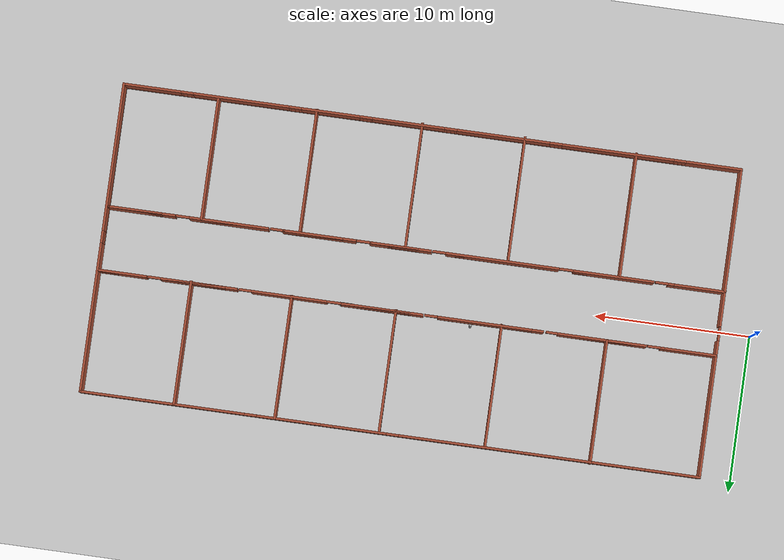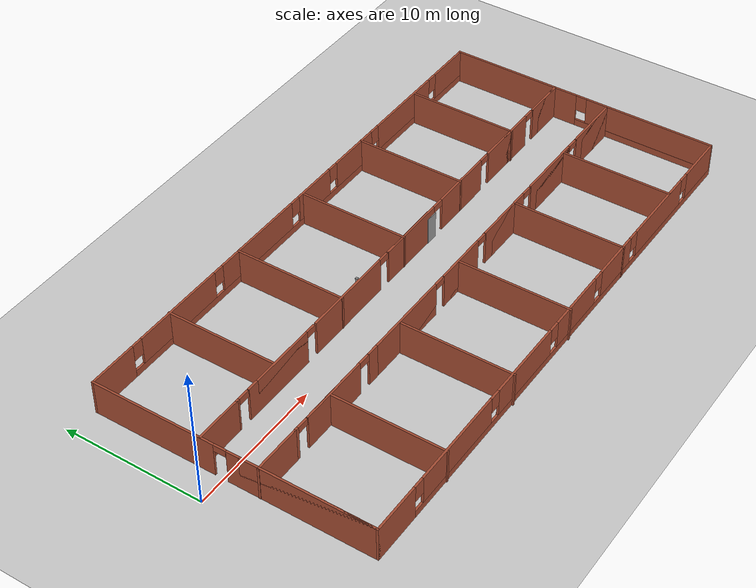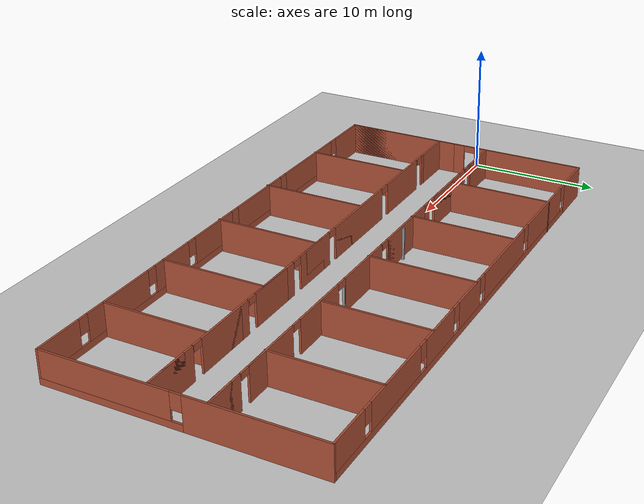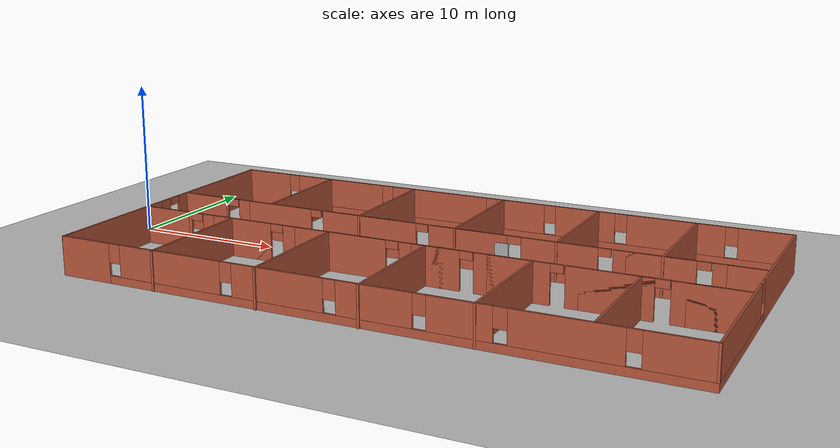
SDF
<sdf version="1.7">
 <world name="default">
  <light name="sun" type="directional">
   <pose>0 0 10 0 -0 0</pose>
   <diffuse>0.8 0.8 0.8 1</diffuse>
   <specular>0.2 0.2 0.2 1</specular>
   <attenuation>
    <range>1000</range>
    <constant>0.9</constant>
    <linear>0.01</linear>
    <quadratic>0.001</quadratic>
   </attenuation>
   <direction>-0.5 0.1 -0.9</direction>
   <spot><inner_angle>0</inner_angle><outer_angle>0</outer_angle><falloff>0</falloff></spot>
  </light>
  <model name="ground_plane">
   <static>1</static>
   <link name="link">
    <collision name="collision">
     <geometry><plane><normal>0 0 1</normal><size>100 100</size></plane></geometry>
     <surface>
      <contact><collide_bitmask>65535</collide_bitmask></contact>
      <friction><ode><mu>100</mu><mu2>50</mu2></ode></friction>
     </surface>
    </collision>
    <visual name="visual">
     <cast_shadows>0</cast_shadows>
     <geometry><plane><normal>0 0 1</normal><size>100 100</size></plane></geometry>
     <material>
      <script><uri>file://media/materials/scripts/gazebo.material</uri><name>Gazebo/Grey</name></script>
     </material>
    </visual>
   </link>
  </model>
  <gravity>0 0 -9.8</gravity>
  <magnetic_field>6e-06 2.3e-05 -4.2e-05</magnetic_field>
  <atmosphere type="adiabatic"/>
  <physics type="ode">
   <max_step_size>0.001</max_step_size>
   <real_time_factor>1</real_time_factor>
   <real_time_update_rate>1000</real_time_update_rate>
  </physics>
  <scene><ambient>0.4 0.4 0.4 1</ambient><background>0.7 0.7 0.7 1</background><shadows>1</shadows></scene>
  <spherical_coordinates>
   <surface_model>EARTH_WGS84</surface_model>
   <latitude_deg>0</latitude_deg>
   <longitude_deg>0</longitude_deg>
   <elevation>0</elevation>
   <heading_deg>0</heading_deg>
  </spherical_coordinates>
  <model name="B4_Mechatronics">
   <pose>22.0011 -0.572284 0 0 -0 0</pose>
   <link name="Door_15">
    <collision name="Door_15_Collision">
     <geometry><box><size>0.9 0.17 2</size></box></geometry>
     <pose>0 0 1 0 -0 0</pose>
    </collision>
    <visual name="Door_15_Visual">
     <pose>0 0 1 0 -0 0</pose>
     <geometry><box><size>0.9 0.17 2</size></box></geometry>
     <material>
      <script><uri>file://media/materials/scripts/gazebo.material</uri><name>Gazebo/Grey</name></script>
     </material>
    </visual>
    <pose>3.88774 2.09865 0 0 -0 0</pose>
   </link>
   <link name="Wall_18">
    <pose>0.010662 -9.8888 0 0 -0 0</pose>
    <visual name="Wall_18_Visual_0">
     <pose>-18.1899 0 1.25 0 -0 0</pose>
     <geometry><box><size>3.6203 0.15 2.5</size></box></geometry>
     <material>
      <script><uri>file://media/materials/scripts/gazebo.material</uri><name>Gazebo/Bricks</name></script>
      <ambient>1 1 1 1</ambient>
     </material>
     <meta><layer>0</layer></meta>
    </visual>
    <collision name="Wall_18_Collision_0">
     <geometry><box><size>3.6203 0.15 2.5</size></box></geometry>
     <pose>-18.1899 0 1.25 0 -0 0</pose>
    </collision>
    <visual name="Wall_18_Visual_1">
     <pose>1.81015 0 0.25 0 -0 0</pose>
     <geometry><box><size>36.3797 0.15 0.5</size></box></geometry>
     <material>
      <script><uri>file://media/materials/scripts/gazebo.material</uri><name>Gazebo/Bricks</name></script>
      <ambient>1 1 1 1</ambient>
     </material>
     <meta><layer>0</layer></meta>
    </visual>
    <collision name="Wall_18_Collision_1">
     <geometry><box><size>36.3797 0.15 0.5</size></box></geometry>
     <pose>1.81015 0 0.25 0 -0 0</pose>
    </collision>
    <visual name="Wall_18_Visual_2">
     <pose>-11.9771 0 1.5 0 -0 0</pose>
     <geometry><box><size>7.2052 0.15 2</size></box></geometry>
     <material>
      <script><uri>file://media/materials/scripts/gazebo.material</uri><name>Gazebo/Bricks</name></script>
      <ambient>1 1 1 1</ambient>
     </material>
     <meta><layer>0</layer></meta>
    </visual>
    <collision name="Wall_18_Collision_2">
     <geometry><box><size>7.2052 0.15 2</size></box></geometry>
     <pose>-11.9771 0 1.5 0 -0 0</pose>
    </collision>
    <visual name="Wall_18_Visual_3">
     <pose>-4.57407 0 1.5 0 -0 0</pose>
     <geometry><box><size>6.00086 0.15 2</size></box></geometry>
     <material>
      <script><uri>file://media/materials/scripts/gazebo.material</uri><name>Gazebo/Bricks</name></script>
      <ambient>1 1 1 1</ambient>
     </material>
     <meta><layer>0</layer></meta>
    </visual>
    <collision name="Wall_18_Collision_3">
     <geometry><box><size>6.00086 0.15 2</size></box></geometry>
     <pose>-4.57407 0 1.5 0 -0 0</pose>
    </collision>
    <visual name="Wall_18_Visual_4">
     <pose>1.55577 0 1.5 0 -0 0</pose>
     <geometry><box><size>4.65882 0.15 2</size></box></geometry>
     <material>
      <script><uri>file://media/materials/scripts/gazebo.material</uri><name>Gazebo/Bricks</name></script>
      <ambient>1 1 1 1</ambient>
     </material>
     <meta><layer>0</layer></meta>
    </visual>
    <collision name="Wall_18_Collision_4">
     <geometry><box><size>4.65882 0.15 2</size></box></geometry>
     <pose>1.55577 0 1.5 0 -0 0</pose>
    </collision>
    <visual name="Wall_18_Visual_5">
     <pose>6.57511 0 1.5 0 -0 0</pose>
     <geometry><box><size>3.77986 0.15 2</size></box></geometry>
     <material>
      <script><uri>file://media/materials/scripts/gazebo.material</uri><name>Gazebo/Bricks</name></script>
      <ambient>1 1 1 1</ambient>
     </material>
     <meta><layer>0</layer></meta>
    </visual>
    <collision name="Wall_18_Collision_5">
     <geometry><box><size>3.77986 0.15 2</size></box></geometry>
     <pose>6.57511 0 1.5 0 -0 0</pose>
    </collision>
    <visual name="Wall_18_Visual_6">
     <pose>12.3525 0 1.5 0 -0 0</pose>
     <geometry><box><size>6.17492 0.15 2</size></box></geometry>
     <material>
      <script><uri>file://media/materials/scripts/gazebo.material</uri><name>Gazebo/Bricks</name></script>
      <ambient>1 1 1 1</ambient>
     </material>
     <meta><layer>0</layer></meta>
    </visual>
    <collision name="Wall_18_Collision_6">
     <geometry><box><size>6.17492 0.15 2</size></box></geometry>
     <pose>12.3525 0 1.5 0 -0 0</pose>
    </collision>
    <visual name="Wall_18_Visual_7">
     <pose>18.12 0 1.5 0 -0 0</pose>
     <geometry><box><size>3.76003 0.15 2</size></box></geometry>
     <material>
      <script><uri>file://media/materials/scripts/gazebo.material</uri><name>Gazebo/Bricks</name></script>
      <ambient>1 1 1 1</ambient>
     </material>
     <meta><layer>0</layer></meta>
    </visual>
    <collision name="Wall_18_Collision_7">
     <geometry><box><size>3.76003 0.15 2</size></box></geometry>
     <pose>18.12 0 1.5 0 -0 0</pose>
    </collision>
    <visual name="Wall_18_Visual_8">
     <pose>-15.9797 0 1.9 0 -0 0</pose>
     <geometry><box><size>0.8 0.15 1.2</size></box></geometry>
     <material>
      <script><uri>file://media/materials/scripts/gazebo.material</uri><name>Gazebo/Bricks</name></script>
      <ambient>1 1 1 1</ambient>
     </material>
     <meta><layer>0</layer></meta>
    </visual>
    <collision name="Wall_18_Collision_8">
     <geometry><box><size>0.8 0.15 1.2</size></box></geometry>
     <pose>-15.9797 0 1.9 0 -0 0</pose>
    </collision>
    <visual name="Wall_18_Visual_9">
     <pose>-7.9745 0 1.9 0 -0 0</pose>
     <geometry><box><size>0.8 0.15 1.2</size></box></geometry>
     <material>
      <script><uri>file://media/materials/scripts/gazebo.material</uri><name>Gazebo/Bricks</name></script>
      <ambient>1 1 1 1</ambient>
     </material>
     <meta><layer>0</layer></meta>
    </visual>
    <collision name="Wall_18_Collision_9">
     <geometry><box><size>0.8 0.15 1.2</size></box></geometry>
     <pose>-7.9745 0 1.9 0 -0 0</pose>
    </collision>
    <visual name="Wall_18_Visual_10">
     <pose>-1.17364 0 1.9 0 -0 0</pose>
     <geometry><box><size>0.8 0.15 1.2</size></box></geometry>
     <material>
      <script><uri>file://media/materials/scripts/gazebo.material</uri><name>Gazebo/Bricks</name></script>
      <ambient>1 1 1 1</ambient>
     </material>
     <meta><layer>0</layer></meta>
    </visual>
    <collision name="Wall_18_Collision_10">
     <geometry><box><size>0.8 0.15 1.2</size></box></geometry>
     <pose>-1.17364 0 1.9 0 -0 0</pose>
    </collision>
    <visual name="Wall_18_Visual_11">
     <pose>4.28518 0 1.9 0 -0 0</pose>
     <geometry><box><size>0.8 0.15 1.2</size></box></geometry>
     <material>
      <script><uri>file://media/materials/scripts/gazebo.material</uri><name>Gazebo/Bricks</name></script>
      <ambient>1 1 1 1</ambient>
     </material>
     <meta><layer>0</layer></meta>
    </visual>
    <collision name="Wall_18_Collision_11">
     <geometry><box><size>0.8 0.15 1.2</size></box></geometry>
     <pose>4.28518 0 1.9 0 -0 0</pose>
    </collision>
    <visual name="Wall_18_Visual_12">
     <pose>8.86504 0 1.9 0 -0 0</pose>
     <geometry><box><size>0.8 0.15 1.2</size></box></geometry>
     <material>
      <script><uri>file://media/materials/scripts/gazebo.material</uri><name>Gazebo/Bricks</name></script>
      <ambient>1 1 1 1</ambient>
     </material>
     <meta><layer>0</layer></meta>
    </visual>
    <collision name="Wall_18_Collision_12">
     <geometry><box><size>0.8 0.15 1.2</size></box></geometry>
     <pose>8.86504 0 1.9 0 -0 0</pose>
    </collision>
    <visual name="Wall_18_Visual_13">
     <pose>15.84 0 1.9 0 -0 0</pose>
     <geometry><box><size>0.8 0.15 1.2</size></box></geometry>
     <material>
      <script><uri>file://media/materials/scripts/gazebo.material</uri><name>Gazebo/Bricks</name></script>
      <ambient>1 1 1 1</ambient>
     </material>
     <meta><layer>0</layer></meta>
    </visual>
    <collision name="Wall_18_Collision_13">
     <geometry><box><size>0.8 0.15 1.2</size></box></geometry>
     <pose>15.84 0 1.9 0 -0 0</pose>
    </collision>
   </link>
   <link name="Wall_21">
    <pose>1.65506 2.12907 0 0 -0 0</pose>
    <visual name="Wall_21_Visual_0">
     <pose>-18.1274 0 1.25 0 -0 0</pose>
     <geometry><box><size>0.245247 0.15 2.5</size></box></geometry>
     <material>
      <script><uri>file://media/materials/scripts/gazebo.material</uri><name>Gazebo/Bricks</name></script>
      <ambient>1 1 1 1</ambient>
     </material>
     <meta><layer>0</layer></meta>
    </visual>
    <collision name="Wall_21_Collision_0">
     <geometry><box><size>0.245247 0.15 2.5</size></box></geometry>
     <pose>-18.1274 0 1.25 0 -0 0</pose>
    </collision>
    <visual name="Wall_21_Visual_1">
     <pose>-14.2392 0 1.25 0 -0 0</pose>
     <geometry><box><size>5.73102 0.15 2.5</size></box></geometry>
     <material>
      <script><uri>file://media/materials/scripts/gazebo.material</uri><name>Gazebo/Bricks</name></script>
      <ambient>1 1 1 1</ambient>
     </material>
     <meta><layer>0</layer></meta>
    </visual>
    <collision name="Wall_21_Collision_1">
     <geometry><box><size>5.73102 0.15 2.5</size></box></geometry>
     <pose>-14.2392 0 1.25 0 -0 0</pose>
    </collision>
    <visual name="Wall_21_Visual_2">
     <pose>-13.8134 0 1.25 0 -0 0</pose>
     <geometry><box><size>4.87932 0.15 2.5</size></box></geometry>
     <material>
      <script><uri>file://media/materials/scripts/gazebo.material</uri><name>Gazebo/Bricks</name></script>
      <ambient>1 1 1 1</ambient>
     </material>
     <meta><layer>0</layer></meta>
    </visual>
    <collision name="Wall_21_Collision_2">
     <geometry><box><size>4.87932 0.15 2.5</size></box></geometry>
     <pose>-13.8134 0 1.25 0 -0 0</pose>
    </collision>
    <visual name="Wall_21_Visual_3">
     <pose>-7.04602 0 1.25 0 -0 0</pose>
     <geometry><box><size>6.85543 0.15 2.5</size></box></geometry>
     <material>
      <script><uri>file://media/materials/scripts/gazebo.material</uri><name>Gazebo/Bricks</name></script>
      <ambient>1 1 1 1</ambient>
     </material>
     <meta><layer>0</layer></meta>
    </visual>
    <collision name="Wall_21_Collision_3">
     <geometry><box><size>6.85543 0.15 2.5</size></box></geometry>
     <pose>-7.04602 0 1.25 0 -0 0</pose>
    </collision>
    <visual name="Wall_21_Visual_4">
     <pose>-6.6658 0 1.25 0 -0 0</pose>
     <geometry><box><size>6.09499 0.15 2.5</size></box></geometry>
     <material>
      <script><uri>file://media/materials/scripts/gazebo.material</uri><name>Gazebo/Bricks</name></script>
      <ambient>1 1 1 1</ambient>
     </material>
     <meta><layer>0</layer></meta>
    </visual>
    <collision name="Wall_21_Collision_4">
     <geometry><box><size>6.09499 0.15 2.5</size></box></geometry>
     <pose>-6.6658 0 1.25 0 -0 0</pose>
    </collision>
    <visual name="Wall_21_Visual_5">
     <pose>-0.065721 0 1.25 0 -0 0</pose>
     <geometry><box><size>5.30517 0.15 2.5</size></box></geometry>
     <material>
      <script><uri>file://media/materials/scripts/gazebo.material</uri><name>Gazebo/Bricks</name></script>
      <ambient>1 1 1 1</ambient>
     </material>
     <meta><layer>0</layer></meta>
    </visual>
    <collision name="Wall_21_Collision_5">
     <geometry><box><size>5.30517 0.15 2.5</size></box></geometry>
     <pose>-0.065721 0 1.25 0 -0 0</pose>
    </collision>
    <visual name="Wall_21_Visual_6">
     <pose>0.344915 0 1.25 0 -0 0</pose>
     <geometry><box><size>4.4839 0.15 2.5</size></box></geometry>
     <material>
      <script><uri>file://media/materials/scripts/gazebo.material</uri><name>Gazebo/Bricks</name></script>
      <ambient>1 1 1 1</ambient>
     </material>
     <meta><layer>0</layer></meta>
    </visual>
    <collision name="Wall_21_Collision_6">
     <geometry><box><size>4.4839 0.15 2.5</size></box></geometry>
     <pose>0.344915 0 1.25 0 -0 0</pose>
    </collision>
    <visual name="Wall_21_Visual_7">
     <pose>5.92653 0 1.25 0 -0 0</pose>
     <geometry><box><size>4.87932 0.15 2.5</size></box></geometry>
     <material>
      <script><uri>file://media/materials/scripts/gazebo.material</uri><name>Gazebo/Bricks</name></script>
      <ambient>1 1 1 1</ambient>
     </material>
     <meta><layer>0</layer></meta>
    </visual>
    <collision name="Wall_21_Collision_7">
     <geometry><box><size>4.87932 0.15 2.5</size></box></geometry>
     <pose>5.92653 0 1.25 0 -0 0</pose>
    </collision>
    <visual name="Wall_21_Visual_8">
     <pose>11.7363 0 1.25 0 -0 0</pose>
     <geometry><box><size>4.94016 0.15 2.5</size></box></geometry>
     <material>
      <script><uri>file://media/materials/scripts/gazebo.material</uri><name>Gazebo/Bricks</name></script>
      <ambient>1 1 1 1</ambient>
     </material>
     <meta><layer>0</layer></meta>
    </visual>
    <collision name="Wall_21_Collision_8">
     <geometry><box><size>4.94016 0.15 2.5</size></box></geometry>
     <pose>11.7363 0 1.25 0 -0 0</pose>
    </collision>
    <visual name="Wall_21_Visual_9">
     <pose>12.1317 0 1.25 0 -0 0</pose>
     <geometry><box><size>4.1493 0.15 2.5</size></box></geometry>
     <material>
      <script><uri>file://media/materials/scripts/gazebo.material</uri><name>Gazebo/Bricks</name></script>
      <ambient>1 1 1 1</ambient>
     </material>
     <meta><layer>0</layer></meta>
    </visual>
    <collision name="Wall_21_Collision_9">
     <geometry><box><size>4.1493 0.15 2.5</size></box></geometry>
     <pose>12.1317 0 1.25 0 -0 0</pose>
    </collision>
    <visual name="Wall_21_Visual_10">
     <pose>16.6782 0 1.25 0 -0 0</pose>
     <geometry><box><size>3.14365 0.15 2.5</size></box></geometry>
     <material>
      <script><uri>file://media/materials/scripts/gazebo.material</uri><name>Gazebo/Bricks</name></script>
      <ambient>1 1 1 1</ambient>
     </material>
     <meta><layer>0</layer></meta>
    </visual>
    <collision name="Wall_21_Collision_10">
     <geometry><box><size>3.14365 0.15 2.5</size></box></geometry>
     <pose>16.6782 0 1.25 0 -0 0</pose>
    </collision>
    <visual name="Wall_21_Visual_11">
     <pose>17.0888 0 1.25 0 -0 0</pose>
     <geometry><box><size>2.32238 0.15 2.5</size></box></geometry>
     <material>
      <script><uri>file://media/materials/scripts/gazebo.material</uri><name>Gazebo/Bricks</name></script>
      <ambient>1 1 1 1</ambient>
     </material>
     <meta><layer>0</layer></meta>
    </visual>
    <collision name="Wall_21_Collision_11">
     <geometry><box><size>2.32238 0.15 2.5</size></box></geometry>
     <pose>17.0888 0 1.25 0 -0 0</pose>
    </collision>
    <visual name="Wall_21_Visual_12">
     <pose>-17.5789 0 2.25 0 -0 0</pose>
     <geometry><box><size>0.85169 0.15 0.5</size></box></geometry>
     <material>
      <script><uri>file://media/materials/scripts/gazebo.material</uri><name>Gazebo/Bricks</name></script>
      <ambient>1 1 1 1</ambient>
     </material>
     <meta><layer>0</layer></meta>
    </visual>
    <collision name="Wall_21_Collision_12">
     <geometry><box><size>0.85169 0.15 0.5</size></box></geometry>
     <pose>-17.5789 0 2.25 0 -0 0</pose>
    </collision>
    <visual name="Wall_21_Visual_13">
     <pose>-10.9935 0 2.25 0 -0 0</pose>
     <geometry><box><size>0.760437 0.15 0.5</size></box></geometry>
     <material>
      <script><uri>file://media/materials/scripts/gazebo.material</uri><name>Gazebo/Bricks</name></script>
      <ambient>1 1 1 1</ambient>
     </material>
     <meta><layer>0</layer></meta>
    </visual>
    <collision name="Wall_21_Collision_13">
     <geometry><box><size>0.760437 0.15 0.5</size></box></geometry>
     <pose>-10.9935 0 2.25 0 -0 0</pose>
    </collision>
    <visual name="Wall_21_Visual_14">
     <pose>-10.9935 0 2.25 0 -0 0</pose>
     <geometry><box><size>0.760437 0.15 0.5</size></box></geometry>
     <material>
      <script><uri>file://media/materials/scripts/gazebo.material</uri><name>Gazebo/Bricks</name></script>
      <ambient>1 1 1 1</ambient>
     </material>
     <meta><layer>0</layer></meta>
    </visual>
    <collision name="Wall_21_Collision_14">
     <geometry><box><size>0.760437 0.15 0.5</size></box></geometry>
     <pose>-10.9935 0 2.25 0 -0 0</pose>
    </collision>
    <visual name="Wall_21_Visual_15">
     <pose>-3.20767 0 2.25 0 -0 0</pose>
     <geometry><box><size>0.821272 0.15 0.5</size></box></geometry>
     <material>
      <script><uri>file://media/materials/scripts/gazebo.material</uri><name>Gazebo/Bricks</name></script>
      <ambient>1 1 1 1</ambient>
     </material>
     <meta><layer>0</layer></meta>
    </visual>
    <collision name="Wall_21_Collision_15">
     <geometry><box><size>0.821272 0.15 0.5</size></box></geometry>
     <pose>-3.20767 0 2.25 0 -0 0</pose>
    </collision>
    <visual name="Wall_21_Visual_16">
     <pose>-3.20767 0 2.25 0 -0 0</pose>
     <geometry><box><size>0.821272 0.15 0.5</size></box></geometry>
     <material>
      <script><uri>file://media/materials/scripts/gazebo.material</uri><name>Gazebo/Bricks</name></script>
      <ambient>1 1 1 1</ambient>
     </material>
     <meta><layer>0</layer></meta>
    </visual>
    <collision name="Wall_21_Collision_16">
     <geometry><box><size>0.821272 0.15 0.5</size></box></geometry>
     <pose>-3.20767 0 2.25 0 -0 0</pose>
    </collision>
    <visual name="Wall_21_Visual_17">
     <pose>3.03686 0 2.25 0 -0 0</pose>
     <geometry><box><size>0.9 0.15 0.5</size></box></geometry>
     <material>
      <script><uri>file://media/materials/scripts/gazebo.material</uri><name>Gazebo/Bricks</name></script>
      <ambient>1 1 1 1</ambient>
     </material>
     <meta><layer>0</layer></meta>
    </visual>
    <collision name="Wall_21_Collision_17">
     <geometry><box><size>0.9 0.15 0.5</size></box></geometry>
     <pose>3.03686 0 2.25 0 -0 0</pose>
    </collision>
    <visual name="Wall_21_Visual_18">
     <pose>3.03686 0 2.25 0 -0 0</pose>
     <geometry><box><size>0.9 0.15 0.5</size></box></geometry>
     <material>
      <script><uri>file://media/materials/scripts/gazebo.material</uri><name>Gazebo/Bricks</name></script>
      <ambient>1 1 1 1</ambient>
     </material>
     <meta><layer>0</layer></meta>
    </visual>
    <collision name="Wall_21_Collision_18">
     <geometry><box><size>0.9 0.15 0.5</size></box></geometry>
     <pose>3.03686 0 2.25 0 -0 0</pose>
    </collision>
    <visual name="Wall_21_Visual_19">
     <pose>8.76162 0 2.25 0 -0 0</pose>
     <geometry><box><size>0.790855 0.15 0.5</size></box></geometry>
     <material>
      <script><uri>file://media/materials/scripts/gazebo.material</uri><name>Gazebo/Bricks</name></script>
      <ambient>1 1 1 1</ambient>
     </material>
     <meta><layer>0</layer></meta>
    </visual>
    <collision name="Wall_21_Collision_19">
     <geometry><box><size>0.790855 0.15 0.5</size></box></geometry>
     <pose>8.76162 0 2.25 0 -0 0</pose>
    </collision>
    <visual name="Wall_21_Visual_20">
     <pose>14.617 0 2.25 0 -0 0</pose>
     <geometry><box><size>0.821274 0.15 0.5</size></box></geometry>
     <material>
      <script><uri>file://media/materials/scripts/gazebo.material</uri><name>Gazebo/Bricks</name></script>
      <ambient>1 1 1 1</ambient>
     </material>
     <meta><layer>0</layer></meta>
    </visual>
    <collision name="Wall_21_Collision_20">
     <geometry><box><size>0.821274 0.15 0.5</size></box></geometry>
     <pose>14.617 0 2.25 0 -0 0</pose>
    </collision>
    <visual name="Wall_21_Visual_21">
     <pose>14.617 0 2.25 0 -0 0</pose>
     <geometry><box><size>0.821274 0.15 0.5</size></box></geometry>
     <material>
      <script><uri>file://media/materials/scripts/gazebo.material</uri><name>Gazebo/Bricks</name></script>
      <ambient>1 1 1 1</ambient>
     </material>
     <meta><layer>0</layer></meta>
    </visual>
    <collision name="Wall_21_Collision_21">
     <geometry><box><size>0.821274 0.15 0.5</size></box></geometry>
     <pose>14.617 0 2.25 0 -0 0</pose>
    </collision>
   </link>
   <link name="Wall_23">
    <collision name="Wall_23_Collision">
     <geometry><box><size>3.45374 0.15 2.5</size></box></geometry>
     <pose>0 0 1.25 0 -0 0</pose>
    </collision>
    <visual name="Wall_23_Visual">
     <pose>0 0 1.25 0 -0 0</pose>
     <geometry><box><size>3.45374 0.15 2.5</size></box></geometry>
     <material>
      <script><uri>file://media/materials/scripts/gazebo.material</uri><name>Gazebo/Bricks</name></script>
      <ambient>1 1 1 1</ambient>
     </material>
     <meta><layer>0</layer></meta>
    </visual>
    <pose>-18.2181 2.12907 0 0 -0 3.14159</pose>
   </link>
   <link name="Wall_27">
    <pose>1.58934 -1.98686 0 0 -0 0</pose>
    <visual name="Wall_27_Visual_0">
     <pose>-18.0585 0 1.25 0 -0 0</pose>
     <geometry><box><size>0.383098 0.15 2.5</size></box></geometry>
     <material>
      <script><uri>file://media/materials/scripts/gazebo.material</uri><name>Gazebo/Bricks</name></script>
      <ambient>1 1 1 1</ambient>
     </material>
     <meta><layer>0</layer></meta>
    </visual>
    <collision name="Wall_27_Collision_0">
     <geometry><box><size>0.383098 0.15 2.5</size></box></geometry>
     <pose>-18.0585 0 1.25 0 -0 0</pose>
    </collision>
    <visual name="Wall_27_Visual_1">
     <pose>-14.3561 0 1.25 0 -0 0</pose>
     <geometry><box><size>5.22152 0.15 2.5</size></box></geometry>
     <material>
      <script><uri>file://media/materials/scripts/gazebo.material</uri><name>Gazebo/Bricks</name></script>
      <ambient>1 1 1 1</ambient>
     </material>
     <meta><layer>0</layer></meta>
    </visual>
    <collision name="Wall_27_Collision_1">
     <geometry><box><size>5.22152 0.15 2.5</size></box></geometry>
     <pose>-14.3561 0 1.25 0 -0 0</pose>
    </collision>
    <visual name="Wall_27_Visual_2">
     <pose>-13.9352 0 1.25 0 -0 0</pose>
     <geometry><box><size>4.37956 0.15 2.5</size></box></geometry>
     <material>
      <script><uri>file://media/materials/scripts/gazebo.material</uri><name>Gazebo/Bricks</name></script>
      <ambient>1 1 1 1</ambient>
     </material>
     <meta><layer>0</layer></meta>
    </visual>
    <collision name="Wall_27_Collision_2">
     <geometry><box><size>4.37956 0.15 2.5</size></box></geometry>
     <pose>-13.9352 0 1.25 0 -0 0</pose>
    </collision>
    <visual name="Wall_27_Visual_3">
     <pose>-7.18522 0 1.25 0 -0 0</pose>
     <geometry><box><size>7.32033 0.15 2.5</size></box></geometry>
     <material>
      <script><uri>file://media/materials/scripts/gazebo.material</uri><name>Gazebo/Bricks</name></script>
      <ambient>1 1 1 1</ambient>
     </material>
     <meta><layer>0</layer></meta>
    </visual>
    <collision name="Wall_27_Collision_3">
     <geometry><box><size>7.32033 0.15 2.5</size></box></geometry>
     <pose>-7.18522 0 1.25 0 -0 0</pose>
    </collision>
    <visual name="Wall_27_Visual_4">
     <pose>-6.74299 0 1.25 0 -0 0</pose>
     <geometry><box><size>6.43589 0.15 2.5</size></box></geometry>
     <material>
      <script><uri>file://media/materials/scripts/gazebo.material</uri><name>Gazebo/Bricks</name></script>
      <ambient>1 1 1 1</ambient>
     </material>
     <meta><layer>0</layer></meta>
    </visual>
    <collision name="Wall_27_Collision_4">
     <geometry><box><size>6.43589 0.15 2.5</size></box></geometry>
     <pose>-6.74299 0 1.25 0 -0 0</pose>
    </collision>
    <visual name="Wall_27_Visual_5">
     <pose>-0.63042 0 1.25 0 -0 0</pose>
     <geometry><box><size>3.98926 0.15 2.5</size></box></geometry>
     <material>
      <script><uri>file://media/materials/scripts/gazebo.material</uri><name>Gazebo/Bricks</name></script>
      <ambient>1 1 1 1</ambient>
     </material>
     <meta><layer>0</layer></meta>
    </visual>
    <collision name="Wall_27_Collision_5">
     <geometry><box><size>3.98926 0.15 2.5</size></box></geometry>
     <pose>-0.63042 0 1.25 0 -0 0</pose>
    </collision>
    <visual name="Wall_27_Visual_6">
     <pose>-0.204363 0 1.25 0 -0 0</pose>
     <geometry><box><size>3.13715 0.15 2.5</size></box></geometry>
     <material>
      <script><uri>file://media/materials/scripts/gazebo.material</uri><name>Gazebo/Bricks</name></script>
      <ambient>1 1 1 1</ambient>
     </material>
     <meta><layer>0</layer></meta>
    </visual>
    <collision name="Wall_27_Collision_6">
     <geometry><box><size>3.13715 0.15 2.5</size></box></geometry>
     <pose>-0.204363 0 1.25 0 -0 0</pose>
    </collision>
    <visual name="Wall_27_Visual_7">
     <pose>4.62783 0 1.25 0 -0 0</pose>
     <geometry><box><size>4.72724 0.15 2.5</size></box></geometry>
     <material>
      <script><uri>file://media/materials/scripts/gazebo.material</uri><name>Gazebo/Bricks</name></script>
      <ambient>1 1 1 1</ambient>
     </material>
     <meta><layer>0</layer></meta>
    </visual>
    <collision name="Wall_27_Collision_7">
     <geometry><box><size>4.72724 0.15 2.5</size></box></geometry>
     <pose>4.62783 0 1.25 0 -0 0</pose>
    </collision>
    <visual name="Wall_27_Visual_8">
     <pose>5.05367 0 1.25 0 -0 0</pose>
     <geometry><box><size>3.87555 0.15 2.5</size></box></geometry>
     <material>
      <script><uri>file://media/materials/scripts/gazebo.material</uri><name>Gazebo/Bricks</name></script>
      <ambient>1 1 1 1</ambient>
     </material>
     <meta><layer>0</layer></meta>
    </visual>
    <collision name="Wall_27_Collision_8">
     <geometry><box><size>3.87555 0.15 2.5</size></box></geometry>
     <pose>5.05367 0 1.25 0 -0 0</pose>
    </collision>
    <visual name="Wall_27_Visual_9">
     <pose>10.4523 0 1.25 0 -0 0</pose>
     <geometry><box><size>5.12162 0.15 2.5</size></box></geometry>
     <material>
      <script><uri>file://media/materials/scripts/gazebo.material</uri><name>Gazebo/Bricks</name></script>
      <ambient>1 1 1 1</ambient>
     </material>
     <meta><layer>0</layer></meta>
    </visual>
    <collision name="Wall_27_Collision_9">
     <geometry><box><size>5.12162 0.15 2.5</size></box></geometry>
     <pose>10.4523 0 1.25 0 -0 0</pose>
    </collision>
    <visual name="Wall_27_Visual_10">
     <pose>10.8477 0 1.25 0 -0 0</pose>
     <geometry><box><size>4.33076 0.15 2.5</size></box></geometry>
     <material>
      <script><uri>file://media/materials/scripts/gazebo.material</uri><name>Gazebo/Bricks</name></script>
      <ambient>1 1 1 1</ambient>
     </material>
     <meta><layer>0</layer></meta>
    </visual>
    <collision name="Wall_27_Collision_10">
     <geometry><box><size>4.33076 0.15 2.5</size></box></geometry>
     <pose>10.8477 0 1.25 0 -0 0</pose>
    </collision>
    <visual name="Wall_27_Visual_11">
     <pose>16.0815 0 1.25 0 -0 0</pose>
     <geometry><box><size>4.33694 0.15 2.5</size></box></geometry>
     <material>
      <script><uri>file://media/materials/scripts/gazebo.material</uri><name>Gazebo/Bricks</name></script>
      <ambient>1 1 1 1</ambient>
     </material>
     <meta><layer>0</layer></meta>
    </visual>
    <collision name="Wall_27_Collision_11">
     <geometry><box><size>4.33694 0.15 2.5</size></box></geometry>
     <pose>16.0815 0 1.25 0 -0 0</pose>
    </collision>
    <visual name="Wall_27_Visual_12">
     <pose>16.505 0 1.25 0 -0 0</pose>
     <geometry><box><size>3.48993 0.15 2.5</size></box></geometry>
     <material>
      <script><uri>file://media/materials/scripts/gazebo.material</uri><name>Gazebo/Bricks</name></script>
      <ambient>1 1 1 1</ambient>
     </material>
     <meta><layer>0</layer></meta>
    </visual>
    <collision name="Wall_27_Collision_12">
     <geometry><box><size>3.48993 0.15 2.5</size></box></geometry>
     <pose>16.505 0 1.25 0 -0 0</pose>
    </collision>
    <visual name="Wall_27_Visual_13">
     <pose>-17.4459 0 2.25 0 -0 0</pose>
     <geometry><box><size>0.841965 0.15 0.5</size></box></geometry>
     <material>
      <script><uri>file://media/materials/scripts/gazebo.material</uri><name>Gazebo/Bricks</name></script>
      <ambient>1 1 1 1</ambient>
     </material>
     <meta><layer>0</layer></meta>
    </visual>
    <collision name="Wall_27_Collision_13">
     <geometry><box><size>0.841965 0.15 0.5</size></box></geometry>
     <pose>-17.4459 0 2.25 0 -0 0</pose>
    </collision>
    <visual name="Wall_27_Visual_14">
     <pose>-11.3032 0 2.25 0 -0 0</pose>
     <geometry><box><size>0.884443 0.15 0.5</size></box></geometry>
     <material>
      <script><uri>file://media/materials/scripts/gazebo.material</uri><name>Gazebo/Bricks</name></script>
      <ambient>1 1 1 1</ambient>
     </material>
     <meta><layer>0</layer></meta>
    </visual>
    <collision name="Wall_27_Collision_14">
     <geometry><box><size>0.884443 0.15 0.5</size></box></geometry>
     <pose>-11.3032 0 2.25 0 -0 0</pose>
    </collision>
    <visual name="Wall_27_Visual_15">
     <pose>-11.3032 0 2.25 0 -0 0</pose>
     <geometry><box><size>0.884443 0.15 0.5</size></box></geometry>
     <material>
      <script><uri>file://media/materials/scripts/gazebo.material</uri><name>Gazebo/Bricks</name></script>
      <ambient>1 1 1 1</ambient>
     </material>
     <meta><layer>0</layer></meta>
    </visual>
    <collision name="Wall_27_Collision_15">
     <geometry><box><size>0.884443 0.15 0.5</size></box></geometry>
     <pose>-11.3032 0 2.25 0 -0 0</pose>
    </collision>
    <visual name="Wall_27_Visual_16">
     <pose>-3.09899 0 2.25 0 -0 0</pose>
     <geometry><box><size>0.852114 0.15 0.5</size></box></geometry>
     <material>
      <script><uri>file://media/materials/scripts/gazebo.material</uri><name>Gazebo/Bricks</name></script>
      <ambient>1 1 1 1</ambient>
     </material>
     <meta><layer>0</layer></meta>
    </visual>
    <collision name="Wall_27_Collision_16">
     <geometry><box><size>0.852114 0.15 0.5</size></box></geometry>
     <pose>-3.09899 0 2.25 0 -0 0</pose>
    </collision>
    <visual name="Wall_27_Visual_17">
     <pose>-3.09899 0 2.25 0 -0 0</pose>
     <geometry><box><size>0.852114 0.15 0.5</size></box></geometry>
     <material>
      <script><uri>file://media/materials/scripts/gazebo.material</uri><name>Gazebo/Bricks</name></script>
      <ambient>1 1 1 1</ambient>
     </material>
     <meta><layer>0</layer></meta>
    </visual>
    <collision name="Wall_27_Collision_17">
     <geometry><box><size>0.852114 0.15 0.5</size></box></geometry>
     <pose>-3.09899 0 2.25 0 -0 0</pose>
    </collision>
    <visual name="Wall_27_Visual_18">
     <pose>1.79006 0 2.25 0 -0 0</pose>
     <geometry><box><size>0.85169 0.15 0.5</size></box></geometry>
     <material>
      <script><uri>file://media/materials/scripts/gazebo.material</uri><name>Gazebo/Bricks</name></script>
      <ambient>1 1 1 1</ambient>
     </material>
     <meta><layer>0</layer></meta>
    </visual>
    <collision name="Wall_27_Collision_18">
     <geometry><box><size>0.85169 0.15 0.5</size></box></geometry>
     <pose>1.79006 0 2.25 0 -0 0</pose>
    </collision>
    <visual name="Wall_27_Visual_19">
     <pose>1.79006 0 2.25 0 -0 0</pose>
     <geometry><box><size>0.85169 0.15 0.5</size></box></geometry>
     <material>
      <script><uri>file://media/materials/scripts/gazebo.material</uri><name>Gazebo/Bricks</name></script>
      <ambient>1 1 1 1</ambient>
     </material>
     <meta><layer>0</layer></meta>
    </visual>
    <collision name="Wall_27_Collision_19">
     <geometry><box><size>0.85169 0.15 0.5</size></box></geometry>
     <pose>1.79006 0 2.25 0 -0 0</pose>
    </collision>
    <visual name="Wall_27_Visual_20">
     <pose>7.38688 0 2.25 0 -0 0</pose>
     <geometry><box><size>0.790855 0.15 0.5</size></box></geometry>
     <material>
      <script><uri>file://media/materials/scripts/gazebo.material</uri><name>Gazebo/Bricks</name></script>
      <ambient>1 1 1 1</ambient>
     </material>
     <meta><layer>0</layer></meta>
    </visual>
    <collision name="Wall_27_Collision_20">
     <geometry><box><size>0.790855 0.15 0.5</size></box></geometry>
     <pose>7.38688 0 2.25 0 -0 0</pose>
    </collision>
    <visual name="Wall_27_Visual_21">
     <pose>7.38688 0 2.25 0 -0 0</pose>
     <geometry><box><size>0.790855 0.15 0.5</size></box></geometry>
     <material>
      <script><uri>file://media/materials/scripts/gazebo.material</uri><name>Gazebo/Bricks</name></script>
      <ambient>1 1 1 1</ambient>
     </material>
     <meta><layer>0</layer></meta>
    </visual>
    <collision name="Wall_27_Collision_21">
     <geometry><box><size>0.790855 0.15 0.5</size></box></geometry>
     <pose>7.38688 0 2.25 0 -0 0</pose>
    </collision>
    <visual name="Wall_27_Visual_22">
     <pose>13.4366 0 2.25 0 -0 0</pose>
     <geometry><box><size>0.847008 0.15 0.5</size></box></geometry>
     <material>
      <script><uri>file://media/materials/scripts/gazebo.material</uri><name>Gazebo/Bricks</name></script>
      <ambient>1 1 1 1</ambient>
     </material>
     <meta><layer>0</layer></meta>
    </visual>
    <collision name="Wall_27_Collision_22">
     <geometry><box><size>0.847008 0.15 0.5</size></box></geometry>
     <pose>13.4366 0 2.25 0 -0 0</pose>
    </collision>
    <visual name="Wall_27_Visual_23">
     <pose>13.4366 0 2.25 0 -0 0</pose>
     <geometry><box><size>0.847008 0.15 0.5</size></box></geometry>
     <material>
      <script><uri>file://media/materials/scripts/gazebo.material</uri><name>Gazebo/Bricks</name></script>
      <ambient>1 1 1 1</ambient>
     </material>
     <meta><layer>0</layer></meta>
    </visual>
    <collision name="Wall_27_Collision_23">
     <geometry><box><size>0.847008 0.15 0.5</size></box></geometry>
     <pose>13.4366 0 2.25 0 -0 0</pose>
    </collision>
   </link>
   <link name="Wall_29">
    <collision name="Wall_29_Collision">
     <geometry><box><size>3.5 0.15 2.5</size></box></geometry>
     <pose>0 0 1.25 0 -0 0</pose>
    </collision>
    <visual name="Wall_29_Visual">
     <pose>0 0 1.25 0 -0 0</pose>
     <geometry><box><size>3.5 0.15 2.5</size></box></geometry>
     <material>
      <script><uri>file://media/materials/scripts/gazebo.material</uri><name>Gazebo/Bricks</name></script>
      <ambient>1 1 1 1</ambient>
     </material>
     <meta><layer>0</layer></meta>
    </visual>
    <pose>-18.2607 -1.98686 0 0 -0 3.14159</pose>
   </link>
   <link name="Wall_3">
    <pose>0.010662 9.9612 0 0 -0 0</pose>
    <visual name="Wall_3_Visual_0">
     <pose>-18.21 0 1.25 0 -0 0</pose>
     <geometry><box><size>3.58007 0.15 2.5</size></box></geometry>
     <material>
      <script><uri>file://media/materials/scripts/gazebo.material</uri><name>Gazebo/Bricks</name></script>
      <ambient>1 1 1 1</ambient>
     </material>
     <meta><layer>0</layer></meta>
    </visual>
    <collision name="Wall_3_Collision_0">
     <geometry><box><size>3.58007 0.15 2.5</size></box></geometry>
     <pose>-18.21 0 1.25 0 -0 0</pose>
    </collision>
    <visual name="Wall_3_Visual_1">
     <pose>1.79004 0 0.25 0 -0 0</pose>
     <geometry><box><size>36.4199 0.15 0.5</size></box></geometry>
     <material>
      <script><uri>file://media/materials/scripts/gazebo.material</uri><name>Gazebo/Bricks</name></script>
      <ambient>1 1 1 1</ambient>
     </material>
     <meta><layer>0</layer></meta>
    </visual>
    <collision name="Wall_3_Collision_1">
     <geometry><box><size>36.4199 0.15 0.5</size></box></geometry>
     <pose>1.79004 0 0.25 0 -0 0</pose>
    </collision>
    <visual name="Wall_3_Visual_2">
     <pose>-12.1179 0 1.5 0 -0 0</pose>
     <geometry><box><size>7.00407 0.15 2</size></box></geometry>
     <material>
      <script><uri>file://media/materials/scripts/gazebo.material</uri><name>Gazebo/Bricks</name></script>
      <ambient>1 1 1 1</ambient>
     </material>
     <meta><layer>0</layer></meta>
    </visual>
    <collision name="Wall_3_Collision_2">
     <geometry><box><size>7.00407 0.15 2</size></box></geometry>
     <pose>-12.1179 0 1.5 0 -0 0</pose>
    </collision>
    <visual name="Wall_3_Visual_3">
     <pose>-4.19234 0 1.5 0 -0 0</pose>
     <geometry><box><size>7.24704 0.15 2</size></box></geometry>
     <material>
      <script><uri>file://media/materials/scripts/gazebo.material</uri><name>Gazebo/Bricks</name></script>
      <ambient>1 1 1 1</ambient>
     </material>
     <meta><layer>0</layer></meta>
    </visual>
    <collision name="Wall_3_Collision_3">
     <geometry><box><size>7.24704 0.15 2</size></box></geometry>
     <pose>-4.19234 0 1.5 0 -0 0</pose>
    </collision>
    <visual name="Wall_3_Visual_4">
     <pose>1.94253 0 1.5 0 -0 0</pose>
     <geometry><box><size>3.4227 0.15 2</size></box></geometry>
     <material>
      <script><uri>file://media/materials/scripts/gazebo.material</uri><name>Gazebo/Bricks</name></script>
      <ambient>1 1 1 1</ambient>
     </material>
     <meta><layer>0</layer></meta>
    </visual>
    <collision name="Wall_3_Collision_4">
     <geometry><box><size>3.4227 0.15 2</size></box></geometry>
     <pose>1.94253 0 1.5 0 -0 0</pose>
    </collision>
    <visual name="Wall_3_Visual_5">
     <pose>6.50572 0 1.5 0 -0 0</pose>
     <geometry><box><size>4.10369 0.15 2</size></box></geometry>
     <material>
      <script><uri>file://media/materials/scripts/gazebo.material</uri><name>Gazebo/Bricks</name></script>
      <ambient>1 1 1 1</ambient>
     </material>
     <meta><layer>0</layer></meta>
    </visual>
    <collision name="Wall_3_Collision_5">
     <geometry><box><size>4.10369 0.15 2</size></box></geometry>
     <pose>6.50572 0 1.5 0 -0 0</pose>
    </collision>
    <visual name="Wall_3_Visual_6">
     <pose>12.5396 0 1.5 0 -0 0</pose>
     <geometry><box><size>6.36399 0.15 2</size></box></geometry>
     <material>
      <script><uri>file://media/materials/scripts/gazebo.material</uri><name>Gazebo/Bricks</name></script>
      <ambient>1 1 1 1</ambient>
     </material>
     <meta><layer>0</layer></meta>
    </visual>
    <collision name="Wall_3_Collision_6">
     <geometry><box><size>6.36399 0.15 2</size></box></geometry>
     <pose>12.5396 0 1.5 0 -0 0</pose>
    </collision>
    <visual name="Wall_3_Visual_7">
     <pose>18.2608 0 1.5 0 -0 0</pose>
     <geometry><box><size>3.47844 0.15 2</size></box></geometry>
     <material>
      <script><uri>file://media/materials/scripts/gazebo.material</uri><name>Gazebo/Bricks</name></script>
      <ambient>1 1 1 1</ambient>
     </material>
     <meta><layer>0</layer></meta>
    </visual>
    <collision name="Wall_3_Collision_7">
     <geometry><box><size>3.47844 0.15 2</size></box></geometry>
     <pose>18.2608 0 1.5 0 -0 0</pose>
    </collision>
    <visual name="Wall_3_Visual_8">
     <pose>-16.0199 0 1.9 0 -0 0</pose>
     <geometry><box><size>0.8 0.15 1.2</size></box></geometry>
     <material>
      <script><uri>file://media/materials/scripts/gazebo.material</uri><name>Gazebo/Bricks</name></script>
      <ambient>1 1 1 1</ambient>
     </material>
     <meta><layer>0</layer></meta>
    </visual>
    <collision name="Wall_3_Collision_8">
     <geometry><box><size>0.8 0.15 1.2</size></box></geometry>
     <pose>-16.0199 0 1.9 0 -0 0</pose>
    </collision>
    <visual name="Wall_3_Visual_9">
     <pose>-8.21586 0 1.9 0 -0 0</pose>
     <geometry><box><size>0.8 0.15 1.2</size></box></geometry>
     <material>
      <script><uri>file://media/materials/scripts/gazebo.material</uri><name>Gazebo/Bricks</name></script>
      <ambient>1 1 1 1</ambient>
     </material>
     <meta><layer>0</layer></meta>
    </visual>
    <collision name="Wall_3_Collision_9">
     <geometry><box><size>0.8 0.15 1.2</size></box></geometry>
     <pose>-8.21586 0 1.9 0 -0 0</pose>
    </collision>
    <visual name="Wall_3_Visual_10">
     <pose>-0.168824 0 1.9 0 -0 0</pose>
     <geometry><box><size>0.8 0.15 1.2</size></box></geometry>
     <material>
      <script><uri>file://media/materials/scripts/gazebo.material</uri><name>Gazebo/Bricks</name></script>
      <ambient>1 1 1 1</ambient>
     </material>
     <meta><layer>0</layer></meta>
    </visual>
    <collision name="Wall_3_Collision_10">
     <geometry><box><size>0.8 0.15 1.2</size></box></geometry>
     <pose>-0.168824 0 1.9 0 -0 0</pose>
    </collision>
    <visual name="Wall_3_Visual_11">
     <pose>4.05388 0 1.9 0 -0 0</pose>
     <geometry><box><size>0.8 0.15 1.2</size></box></geometry>
     <material>
      <script><uri>file://media/materials/scripts/gazebo.material</uri><name>Gazebo/Bricks</name></script>
      <ambient>1 1 1 1</ambient>
     </material>
     <meta><layer>0</layer></meta>
    </visual>
    <collision name="Wall_3_Collision_11">
     <geometry><box><size>0.8 0.15 1.2</size></box></geometry>
     <pose>4.05388 0 1.9 0 -0 0</pose>
    </collision>
    <visual name="Wall_3_Visual_12">
     <pose>8.95757 0 1.9 0 -0 0</pose>
     <geometry><box><size>0.8 0.15 1.2</size></box></geometry>
     <material>
      <script><uri>file://media/materials/scripts/gazebo.material</uri><name>Gazebo/Bricks</name></script>
      <ambient>1 1 1 1</ambient>
     </material>
     <meta><layer>0</layer></meta>
    </visual>
    <collision name="Wall_3_Collision_12">
     <geometry><box><size>0.8 0.15 1.2</size></box></geometry>
     <pose>8.95757 0 1.9 0 -0 0</pose>
    </collision>
    <visual name="Wall_3_Visual_13">
     <pose>16.1216 0 1.9 0 -0 0</pose>
     <geometry><box><size>0.8 0.15 1.2</size></box></geometry>
     <material>
      <script><uri>file://media/materials/scripts/gazebo.material</uri><name>Gazebo/Bricks</name></script>
      <ambient>1 1 1 1</ambient>
     </material>
     <meta><layer>0</layer></meta>
    </visual>
    <collision name="Wall_3_Collision_13">
     <geometry><box><size>0.8 0.15 1.2</size></box></geometry>
     <pose>16.1216 0 1.9 0 -0 0</pose>
    </collision>
   </link>
   <link name="Wall_34">
    <collision name="Wall_34_Collision">
     <geometry><box><size>8 0.15 2.5</size></box></geometry>
     <pose>0 0 1.25 0 -0 0</pose>
    </collision>
    <visual name="Wall_34_Visual">
     <pose>0 0 1.25 0 -0 0</pose>
     <geometry><box><size>8 0.15 2.5</size></box></geometry>
     <material>
      <script><uri>file://media/materials/scripts/gazebo.material</uri><name>Gazebo/Bricks</name></script>
      <ambient>1 1 1 1</ambient>
     </material>
     <meta><layer>0</layer></meta>
    </visual>
    <pose>-12.8979 6.06992 0 0 -0 -1.5708</pose>
   </link>
   <link name="Wall_37">
    <collision name="Wall_37_Collision">
     <geometry><box><size>0.15 0.15 2.5</size></box></geometry>
     <pose>0 0 1.25 0 -0 0</pose>
    </collision>
    <visual name="Wall_37_Visual">
     <pose>0 0 1.25 0 -0 0</pose>
     <geometry><box><size>0.15 0.15 2.5</size></box></geometry>
     <material>
      <script><uri>file://media/materials/scripts/gazebo.material</uri><name>Gazebo/Grey</name></script>
      <ambient>1 1 1 1</ambient>
     </material>
     <meta><layer>0</layer></meta>
    </visual>
    <pose>-4.12322 2.36451 0 0 -0 0</pose>
   </link>
   <link name="Wall_42">
    <collision name="Wall_42_Collision">
     <geometry><box><size>8 0.15 2.5</size></box></geometry>
     <pose>0 0 1.25 0 -0 0</pose>
    </collision>
    <visual name="Wall_42_Visual">
     <pose>0 0 1.25 0 -0 0</pose>
     <geometry><box><size>8 0.15 2.5</size></box></geometry>
     <material>
      <script><uri>file://media/materials/scripts/gazebo.material</uri><name>Gazebo/Bricks</name></script>
      <ambient>1 1 1 1</ambient>
     </material>
     <meta><layer>0</layer></meta>
    </visual>
    <pose>-6.11091 6.01185 0 0 -0 1.5708</pose>
   </link>
   <link name="Wall_44">
    <collision name="Wall_44_Collision">
     <geometry><box><size>8 0.15 2.5</size></box></geometry>
     <pose>0 0 1.25 0 -0 0</pose>
    </collision>
    <visual name="Wall_44_Visual">
     <pose>0 0 1.25 0 -0 0</pose>
     <geometry><box><size>8 0.15 2.5</size></box></geometry>
     <material>
      <script><uri>file://media/materials/scripts/gazebo.material</uri><name>Gazebo/Bricks</name></script>
      <ambient>1 1 1 1</ambient>
     </material>
     <meta><layer>0</layer></meta>
    </visual>
    <pose>0.711629 6.01527 0 0 -0 1.5708</pose>
   </link>
   <link name="Wall_46">
    <collision name="Wall_46_Collision">
     <geometry><box><size>8 0.15 2.5</size></box></geometry>
     <pose>0 0 1.25 0 -0 0</pose>
    </collision>
    <visual name="Wall_46_Visual">
     <pose>0 0 1.25 0 -0 0</pose>
     <geometry><box><size>8 0.15 2.5</size></box></geometry>
     <material>
      <script><uri>file://media/materials/scripts/gazebo.material</uri><name>Gazebo/Bricks</name></script>
      <ambient>1 1 1 1</ambient>
     </material>
     <meta><layer>0</layer></meta>
    </visual>
    <pose>7.42319 6.02996 0 0 -0 1.5708</pose>
   </link>
   <link name="Wall_5">
    <pose>-19.9143 0.036201 0 0 -0 -1.5708</pose>
    <visual name="Wall_5_Visual_0">
     <pose>-5.56405 0 1.25 0 -0 0</pose>
     <geometry><box><size>8.8719 0.15 2.5</size></box></geometry>
     <material>
      <script><uri>file://media/materials/scripts/gazebo.material</uri><name>Gazebo/Bricks</name></script>
      <ambient>1 1 1 1</ambient>
     </material>
     <meta><layer>0</layer></meta>
    </visual>
    <collision name="Wall_5_Collision_0">
     <geometry><box><size>8.8719 0.15 2.5</size></box></geometry>
     <pose>-5.56405 0 1.25 0 -0 0</pose>
    </collision>
    <visual name="Wall_5_Visual_1">
     <pose>4.88595 0 1.25 0 -0 0</pose>
     <geometry><box><size>10.2281 0.15 2.5</size></box></geometry>
     <material>
      <script><uri>file://media/materials/scripts/gazebo.material</uri><name>Gazebo/Bricks</name></script>
      <ambient>1 1 1 1</ambient>
     </material>
     <meta><layer>0</layer></meta>
    </visual>
    <collision name="Wall_5_Collision_1">
     <geometry><box><size>10.2281 0.15 2.5</size></box></geometry>
     <pose>4.88595 0 1.25 0 -0 0</pose>
    </collision>
    <visual name="Wall_5_Visual_2">
     <pose>5.32845 0 1.25 0 -0 0</pose>
     <geometry><box><size>9.3431 0.15 2.5</size></box></geometry>
     <material>
      <script><uri>file://media/materials/scripts/gazebo.material</uri><name>Gazebo/Bricks</name></script>
      <ambient>1 1 1 1</ambient>
     </material>
     <meta><layer>0</layer></meta>
    </visual>
    <collision name="Wall_5_Collision_2">
     <geometry><box><size>9.3431 0.15 2.5</size></box></geometry>
     <pose>5.32845 0 1.25 0 -0 0</pose>
    </collision>
    <visual name="Wall_5_Visual_3">
     <pose>-0.685599 0 2.25 0 -0 0</pose>
     <geometry><box><size>0.884997 0.15 0.5</size></box></geometry>
     <material>
      <script><uri>file://media/materials/scripts/gazebo.material</uri><name>Gazebo/Bricks</name></script>
      <ambient>1 1 1 1</ambient>
     </material>
     <meta><layer>0</layer></meta>
    </visual>
    <collision name="Wall_5_Collision_3">
     <geometry><box><size>0.884997 0.15 0.5</size></box></geometry>
     <pose>-0.685599 0 2.25 0 -0 0</pose>
    </collision>
   </link>
   <link name="Wall_51">
    <collision name="Wall_51_Collision">
     <geometry><box><size>8 0.15 2.5</size></box></geometry>
     <pose>0 0 1.25 0 -0 0</pose>
    </collision>
    <visual name="Wall_51_Visual">
     <pose>0 0 1.25 0 -0 0</pose>
     <geometry><box><size>8 0.15 2.5</size></box></geometry>
     <material>
      <script><uri>file://media/materials/scripts/gazebo.material</uri><name>Gazebo/Bricks</name></script>
      <ambient>1 1 1 1</ambient>
     </material>
     <meta><layer>0</layer></meta>
    </visual>
    <pose>7.48301 -5.98982 0 0 -0 1.5708</pose>
   </link>
   <link name="Wall_53">
    <collision name="Wall_53_Collision">
     <geometry><box><size>8 0.15 2.5</size></box></geometry>
     <pose>0 0 1.25 0 -0 0</pose>
    </collision>
    <visual name="Wall_53_Visual">
     <pose>0 0 1.25 0 -0 0</pose>
     <geometry><box><size>8 0.15 2.5</size></box></geometry>
     <material>
      <script><uri>file://media/materials/scripts/gazebo.material</uri><name>Gazebo/Bricks</name></script>
      <ambient>1 1 1 1</ambient>
     </material>
     <meta><layer>0</layer></meta>
    </visual>
    <pose>0.675358 -6.04736 0 0 -0 1.5708</pose>
   </link>
   <link name="Wall_55">
    <collision name="Wall_55_Collision">
     <geometry><box><size>8 0.15 2.5</size></box></geometry>
     <pose>0 0 1.25 0 -0 0</pose>
    </collision>
    <visual name="Wall_55_Visual">
     <pose>0 0 1.25 0 -0 0</pose>
     <geometry><box><size>8 0.15 2.5</size></box></geometry>
     <material>
      <script><uri>file://media/materials/scripts/gazebo.material</uri><name>Gazebo/Bricks</name></script>
      <ambient>1 1 1 1</ambient>
     </material>
     <meta><layer>0</layer></meta>
    </visual>
    <pose>-5.94725 -6.06992 0 0 -0 1.5708</pose>
   </link>
   <link name="Wall_57">
    <collision name="Wall_57_Collision">
     <geometry><box><size>8 0.15 2.5</size></box></geometry>
     <pose>0 0 1.25 0 -0 0</pose>
    </collision>
    <visual name="Wall_57_Visual">
     <pose>0 0 1.25 0 -0 0</pose>
     <geometry><box><size>8 0.15 2.5</size></box></geometry>
     <material>
      <script><uri>file://media/materials/scripts/gazebo.material</uri><name>Gazebo/Bricks</name></script>
      <ambient>1 1 1 1</ambient>
     </material>
     <meta><layer>0</layer></meta>
    </visual>
    <pose>-13.1487 -6.02366 0 0 -0 1.5708</pose>
   </link>
   <link name="Wall_69">
    <collision name="Wall_69_Collision">
     <geometry><box><size>8 0.15 2.5</size></box></geometry>
     <pose>0 0 1.25 0 -0 0</pose>
    </collision>
    <visual name="Wall_69_Visual">
     <pose>0 0 1.25 0 -0 0</pose>
     <geometry><box><size>8 0.15 2.5</size></box></geometry>
     <material>
      <script><uri>file://media/materials/scripts/gazebo.material</uri><name>Gazebo/Bricks</name></script>
      <ambient>1 1 1 1</ambient>
     </material>
     <meta><layer>0</layer></meta>
    </visual>
    <pose>13.9084 6.00919 0 0 -0 -1.5708</pose>
   </link>
   <link name="Wall_7">
    <pose>19.9357 0.036201 0 0 -0 -1.5708</pose>
    <visual name="Wall_7_Visual_0">
     <pose>-5.17701 0 1.25 0 -0 0</pose>
     <geometry><box><size>9.64599 0.15 2.5</size></box></geometry>
     <material>
      <script><uri>file://media/materials/scripts/gazebo.material</uri><name>Gazebo/Bricks</name></script>
      <ambient>1 1 1 1</ambient>
     </material>
     <meta><layer>0</layer></meta>
    </visual>
    <collision name="Wall_7_Collision_0">
     <geometry><box><size>9.64599 0.15 2.5</size></box></geometry>
     <pose>-5.17701 0 1.25 0 -0 0</pose>
    </collision>
    <visual name="Wall_7_Visual_1">
     <pose>4.82299 0 0.25 0 -0 0</pose>
     <geometry><box><size>10.354 0.15 0.5</size></box></geometry>
     <material>
      <script><uri>file://media/materials/scripts/gazebo.material</uri><name>Gazebo/Bricks</name></script>
      <ambient>1 1 1 1</ambient>
     </material>
     <meta><layer>0</layer></meta>
    </visual>
    <collision name="Wall_7_Collision_1">
     <geometry><box><size>10.354 0.15 0.5</size></box></geometry>
     <pose>4.82299 0 0.25 0 -0 0</pose>
    </collision>
    <visual name="Wall_7_Visual_2">
     <pose>5.223 0 1.5 0 -0 0</pose>
     <geometry><box><size>9.55401 0.15 2</size></box></geometry>
     <material>
      <script><uri>file://media/materials/scripts/gazebo.material</uri><name>Gazebo/Bricks</name></script>
      <ambient>1 1 1 1</ambient>
     </material>
     <meta><layer>0</layer></meta>
    </visual>
    <collision name="Wall_7_Collision_2">
     <geometry><box><size>9.55401 0.15 2</size></box></geometry>
     <pose>5.223 0 1.5 0 -0 0</pose>
    </collision>
    <visual name="Wall_7_Visual_3">
     <pose>0.045991 0 1.9 0 -0 0</pose>
     <geometry><box><size>0.8 0.15 1.2</size></box></geometry>
     <material>
      <script><uri>file://media/materials/scripts/gazebo.material</uri><name>Gazebo/Bricks</name></script>
      <ambient>1 1 1 1</ambient>
     </material>
     <meta><layer>0</layer></meta>
    </visual>
    <collision name="Wall_7_Collision_3">
     <geometry><box><size>0.8 0.15 1.2</size></box></geometry>
     <pose>0.045991 0 1.9 0 -0 0</pose>
    </collision>
   </link>
   <link name="Wall_71">
    <collision name="Wall_71_Collision">
     <geometry><box><size>8 0.15 2.5</size></box></geometry>
     <pose>0 0 1.25 0 -0 0</pose>
    </collision>
    <visual name="Wall_71_Visual">
     <pose>0 0 1.25 0 -0 0</pose>
     <geometry><box><size>8 0.15 2.5</size></box></geometry>
     <material>
      <script><uri>file://media/materials/scripts/gazebo.material</uri><name>Gazebo/Bricks</name></script>
      <ambient>1 1 1 1</ambient>
     </material>
     <meta><layer>0</layer></meta>
    </visual>
    <pose>13.8224 -5.94779 0 0 -0 -1.5708</pose>
   </link>
   <static>1</static>
  </model>
 </world>
</sdf>
